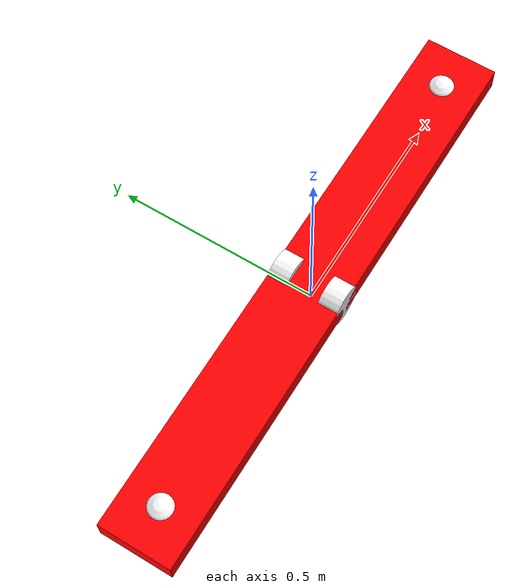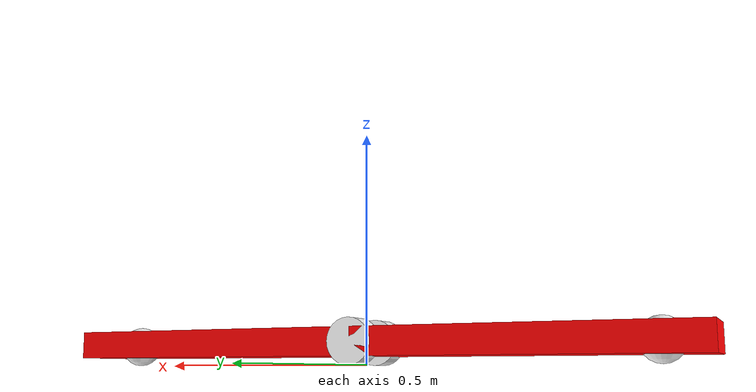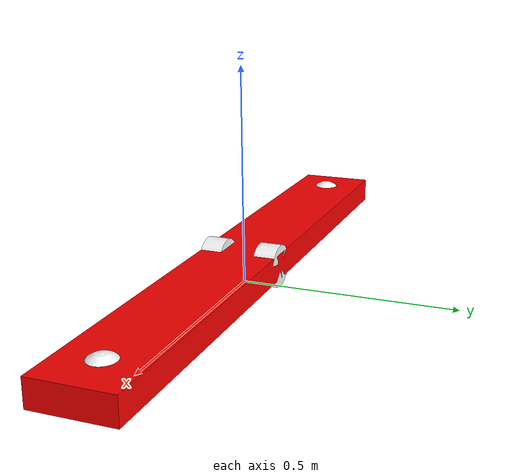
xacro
<?xml version="1.0"?>
<robot name="basic_mobile_bot" xmlns:xacro="http://ros.org/wiki/xacro">

  <xacro:include filename="$(find twinfork_description)/urdf/mech/twinfork.transmission.xacro" />
  <xacro:include filename="$(find twinfork_description)/urdf/controllers/diffdrive_gazebo.xacro" />
  <xacro:include filename="$(find twinfork_description)/urdf/sensors/laserscan.xacro" />
  <xacro:include filename="$(find twinfork_description)/urdf/sensors/imu.xacro" />

  <!-- ****************** ROBOT CONSTANTS *******************************  -->
  <!-- Define the size of the robot's main chassis in meters -->
  <xacro:property name="base_width" value="0.18" />
  <xacro:property name="base_length" value="1.4" />
  <xacro:property name="base_height" value="0.06" />

  <!-- Define the shape of the robot's two back wheels in meters -->
  <xacro:property name="wheel_radius" value="0.049" />
  <xacro:property name="wheel_width" value="0.05" />

  <!-- x-axis points forward, y-axis points to left, z-axis points upwards -->
  <!-- Define the gap between the wheel and chassis along y-axis in meters -->
  <xacro:property name="wheel_ygap" value="0.065" />

  <!-- Position the wheels along the z-axis -->
  <xacro:property name="wheel_zoff" value="0.05" />

  <!-- Position the wheels along the x-axis -->
  <xacro:property name="wheel_xoff" value="0.0" />

  <!-- Position the caster wheel along the x-axis -->
  <xacro:property name="caster_xoff" value="0.6" />

  <xacro:property name="caster_radius" value="0.045" />

  <xacro:property name="imu_stdev" value="0.00017" />

  <!-- Define intertial property macros  -->
  <xacro:macro name="box_inertia" params="m w h d">
    <inertial>
      <origin xyz="0 0 0" rpy="${pi/2} 0 ${pi/2}" />
      <mass value="${m}" />
      <inertia ixx="${(m/12) * (h*h + d*d)}" ixy="0.0" ixz="0.0" iyy="${(m/12) * (w*w + d*d)}"
        iyz="0.0" izz="${(m/12) * (w*w + h*h)}" />
    </inertial>
  </xacro:macro>

  <xacro:macro name="cylinder_inertia" params="m r h">
    <inertial>
      <origin xyz="0 0 0" rpy="${pi/2} 0 0" />
      <mass value="${m}" />
      <inertia ixx="${(m/12) * (3*r*r + h*h)}" ixy="0" ixz="0" iyy="${(m/12) * (3*r*r + h*h)}"
        iyz="0" izz="${(m/2) * (r*r)}" />
    </inertial>
  </xacro:macro>

  <xacro:macro name="sphere_inertia" params="m r">
    <inertial>
      <mass value="${m}" />
      <inertia ixx="${(2/5) * m * (r*r)}" ixy="0.0" ixz="0.0" iyy="${(2/5) * m * (r*r)}" iyz="0.0"
        izz="${(2/5) * m * (r*r)}" />
    </inertial>
  </xacro:macro>

  <!-- ****************** ROBOT BASE FOOTPRINT ***************************  -->
  <!-- Define the center of the main robot chassis projected on the ground -->
  <link name="base_footprint" />

  <!-- The base footprint of the robot is located underneath the chassis -->
  <joint name="base_joint" type="fixed">
    <parent link="base_footprint" />
    <child link="base_link" />
    <origin xyz="0.0 0.0 ${(wheel_radius+wheel_zoff)}" rpy="0 0 0" />
  </joint>

  <!-- ********************** ROBOT BASE *********************************  -->
  <link name="base_link">
    <visual>
      <origin xyz="0 0 -0.05" rpy="0.0 0 0.0" />
      <geometry>
        <box size="${base_length} ${base_width} ${base_height}" />
      </geometry>
      <material name="Red">
        <color rgba="${255/255} ${0/255} ${0/255} 1.0" />
      </material>
    </visual>

    <collision>
      <origin xyz="0 0 -0.05" rpy="0.0 0 0.0" />
      <geometry>
        <box size="${base_length} ${base_width} ${base_height}" />
      </geometry>
    </collision>

    <xacro:box_inertia m="5.0" w="${base_width}" d="${base_length}" h="${base_height}" />

  </link>

  <gazebo reference="base_link">
    <material>Gazebo/Red</material>
  </gazebo>

  <!-- *********************** DRIVE WHEELS ******************************  -->

  <xacro:macro name="wheel" params="prefix x_reflect y_reflect">
    <link name="${prefix}_link">
      <visual>
        <origin xyz="0 0 0" rpy="1.5707963267949 0 0" />
        <geometry>
          <cylinder radius="${wheel_radius}" length="${wheel_width}" />
        </geometry>
        <material name="White">
          <color rgba="${255/255} ${255/255} ${255/255} 1.0" />
        </material>
      </visual>

      <collision>
        <origin xyz="0 0 0" rpy="${pi/2} 0 0" />
        <geometry>
          <cylinder radius="${wheel_radius}" length="${wheel_width}" />
        </geometry>
      </collision>

      <xacro:cylinder_inertia m="10.0" r="${wheel_radius}" h="${wheel_width}" />

    </link>

    <!-- Connect the wheels to the base_link at the appropriate location, and
         define a continuous joint to allow the wheels to freely rotate about
         an axis -->
    <joint name="${prefix}_joint" type="continuous">
      <parent link="base_link" />
      <child link="${prefix}_link" />
      <origin xyz="${x_reflect*wheel_xoff} ${y_reflect*(wheel_ygap)} ${-wheel_zoff}" rpy="0 0 0" />
      <limit effort="1000" velocity="100.0" />
      <axis xyz="0 1 0" />
    </joint>

    <gazebo reference="${prefix}_link">
      <mu1>10.0</mu1>
      <mu2>10.0</mu2>
      <material>Gazebo/Black</material>
    </gazebo>

  </xacro:macro>

  <xacro:wheel prefix="drivewhl_l" x_reflect="-1" y_reflect="1" />
  <xacro:wheel prefix="drivewhl_r" x_reflect="1" y_reflect="-1" />

  <!-- *********************** CASTER WHEEL ******************************  -->
  <!-- We add a caster wheel. It will be modeled as sphere.
       We define the wheel’s geometry, material and the joint to connect it to
       base_link at the appropriate location. -->
  <link name="front_caster">
    <visual>
      <geometry>
        <sphere radius="${caster_radius}" />
      </geometry>
      <material name="White">
        <color rgba="${255/255} ${255/255} ${255/255} 1.0" />
      </material>
    </visual>
    <collision>
      <origin xyz="0 0 0" rpy="0 0 0" />
      <geometry>
        <sphere radius="${caster_radius}" />
      </geometry>
    </collision>
    <xacro:sphere_inertia m="0.1" r="${caster_radius}" />
  </link>

  <gazebo reference="front_caster">
    <mu1>0.01</mu1>
    <mu2>0.01</mu2>
    <material>Gazebo/White</material>
  </gazebo>

  <joint name="front_caster_joint" type="fixed">
    <parent link="base_link" />
    <child link="front_caster" />
    <origin xyz="${caster_xoff} 0.0 ${-(wheel_radius+wheel_zoff-caster_radius-0.001)}" rpy="0 0 0" />
  </joint>

  <link name="back_caster">
    <visual>
      <geometry>
        <sphere radius="${caster_radius}" />
      </geometry>
      <material name="White">
        <color rgba="${255/255} ${255/255} ${255/255} 1.0" />
      </material>
    </visual>
    <collision>
      <origin xyz="0 0 0" rpy="0 0 0" />
      <geometry>
        <sphere radius="${caster_radius}" />
      </geometry>
    </collision>
    <xacro:sphere_inertia m="0.1" r="${caster_radius}" />
  </link>

  <gazebo reference="back_caster">
    <mu1>0.01</mu1>
    <mu2>0.01</mu2>
    <material>Gazebo/White</material>
  </gazebo>

  <joint name="back_caster_joint" type="fixed">
    <parent link="base_link" />
    <child link="back_caster" />
    <origin xyz="${-(caster_xoff)} 0.0 ${-(wheel_radius+wheel_zoff-caster_radius-0.001)}"
      rpy="0 0 0" />
  </joint>

  <!-- *********************** IMU SETUP *********************************  -->
  <!-- Each sensor must be attached to a link.                              -->

  <joint name="imu_joint" type="fixed">
    <parent link="base_link" />
    <child link="imu_link" />
    <origin xyz="-0.10 0 0.05" rpy="0 0 0" />
  </joint>

  <link name="imu_link" />

  <xacro:imu_gazebo link="imu_link" imu_topic="imu_data" update_rate="50.0" stdev="${imu_stdev}" />

  <!-- *********************** GPS SETUP **********************************  -->
  <joint name="gps_joint" type="fixed">
    <parent link="base_link" />
    <child link="gps_link" />
    <origin xyz="0.10 0 0.05" rpy="0 0 0" />
  </joint>

  <link name="gps_link" />

  <link name="lifter_link">
    <visual>
      <origin xyz="0 0 0" rpy="0 0 0" />
      <geometry>
        <box size="${base_length-0.01} ${base_width-0.01} ${base_height-0.01}" />
      </geometry>
      <material name="Blue">
        <color rgba="0.1 0.1 0.9 1.0" />
      </material>
    </visual>
    <collision>
      <origin xyz="0 0 0" rpy="0 0 0" />
      <geometry>
        <box size="${base_length-0.01} ${base_width-0.01} ${base_height-0.01}" />
      </geometry>
    </collision>
    <xacro:box_inertia m="0.5" w="${base_width-0.01}" d="${base_length-0.01}"
      h="${base_height-0.01}" />
  </link>

  <!-- *********************** LIDAR SETUP **********************************  -->
  <!-- Front laser –– ยิงไปข้างหน้า -->
  <xacro:laser_sensor
    name="front_laser"
    parent="base_link"
    xyz="0.60 0 -0.05"
    rpy="0 0 ${(pi/4) - 0.2618}"
    min_angle="-2.356"
    max_angle="2.356"
    topic="front_scan" />

  <!-- Back laser –– ยิงกลับหลัง (หมุน 180°) -->
  <xacro:laser_sensor
    name="back_laser"
    parent="base_link"
    xyz="-0.60 0 -0.05"
    rpy="0 0 ${pi + pi/4 - 0.2618}"
    min_angle="-2.356"
    max_angle="2.356"
    topic="back_scan" />

  <joint name="lifter" type="prismatic">
    <parent link="base_link" />
    <child link="lifter_link" />
    <!-- origin ตั้งตำแหน่งเริ่มต้น -->
    <origin xyz="0 0 -0.05" rpy="0 0 0" />
    <!-- แกน Z บน base_link -->
    <axis xyz="0 0 1" />
    <limit lower="0.0" upper="0.050" effort="100000" velocity="100.0" />
  </joint>

  <xacro:twinfork_wheel_transmissions />
  <xacro:diff_controller_plugin_gazebo
    prefix=""
    ns=""
    left_wheel_joint="drivewhl_l_joint"
    right_wheel_joint="drivewhl_r_joint"
    wheel_separation="${2*wheel_ygap}"
    wheel_radius="${wheel_radius}"
  />

  <transmission name="lifter_trans">
    <type>transmission_interface/SimpleTransmission</type>
    <joint name="lifter">
      <hardwareInterface>hardware_interface/VelocityJointInterface</hardwareInterface>
    </joint>
    <actuator name="lifter_motor">
      <hardwareInterface>hardware_interface/VelocityJointInterface</hardwareInterface>
      <mechanicalReduction>1</mechanicalReduction>
    </actuator>
  </transmission>

  <ros2_control name="GazeboSystem" type="system">
    <hardware>
      <plugin>gazebo_ros2_control/GazeboSystem</plugin>
    </hardware>
    <joint name="lifter">
      <command_interface name="effort">
        <param name="min">-1000</param>
        <param name="max">1000</param>
      </command_interface>
      <state_interface name="position" />
      <state_interface name="velocity" />
      <state_interface name="effort" />
    </joint>
  </ros2_control>

  <gazebo>
    <plugin filename="libgazebo_ros2_control.so" name="gazebo_ros2_control">
      <parameters>$(find twinfork_description)/config/lifter_controller.yaml</parameters>
    </plugin>
  </gazebo>

</robot>

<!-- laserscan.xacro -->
<robot xmlns:xacro="http://ros.org/wiki/xacro">

  <xacro:include filename="$(find twinfork_description)/urdf/common_properties.urdf.xacro" />

  <!-- ===== Macro: laser_sensor ===== -->
  <xacro:macro name="laser_sensor"
    params="
      name
      parent
      xyz:='0 0 0'
      rpy:='0 0 0'
      radius:='0.05'
      length:='0.03'
      mass:='0.20'
      samples:='600'
      min_angle:='-1.57'
      max_angle:='1.57'
      min_range:='0.5'
      max_range:='20.0'
      update_rate:='10'
      topic:='scan'
      namespace:=''">

    <!-- Joint -->
    <joint name="${name}_joint" type="fixed">
      <parent link="${parent}" />
      <child link="${name}_link" />
      <origin xyz="${xyz}" rpy="${rpy}" />
    </joint>

    <!-- Link -->
    <link name="${name}_link">
      <visual>
        <geometry>
          <cylinder radius="${radius}" length="${length}" />
        </geometry>
        <material name="White">
          <color rgba="1 1 1 1" />
        </material>
      </visual>
      <collision>
        <geometry>
          <cylinder radius="${radius}" length="${length}" />
        </geometry>
      </collision>
      <xacro:cylinder_inertial mass="1.0" radius="${radius}" length="${length}">
        <origin xyz="0 0 0" rpy="0 0 0"/>
      </xacro:cylinder_inertial>
    </link>

    <!-- Gazebo sensor -->
    <gazebo reference="${name}_link">
      <sensor name="${name}_ray" type="ray">
        <update_rate>${update_rate}</update_rate>
        <visualize>true</visualize>
        <ray>
          <scan>
            <horizontal>
              <samples>${samples}</samples>
              <min_angle>${min_angle}</min_angle>
              <max_angle>${max_angle}</max_angle>
            </horizontal>
          </scan>
          <range>
            <min>${min_range}</min>
            <max>${max_range}</max>
          </range>
        </ray>
        <plugin name="${name.replace('/', '_')}_plugin" filename="libgazebo_ros_ray_sensor.so">
          <ros>
            <namespace>${namespace}</namespace>
            <remapping>~/out:=${topic}</remapping>
          </ros>
          <output_type>sensor_msgs/LaserScan</output_type>
          <frame_name>${name}_link</frame_name>
        </plugin>
      </sensor>
    </gazebo>

  </xacro:macro>

</robot>

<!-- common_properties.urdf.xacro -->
<!--
  Various useful properties such as constants and materials
 -->
<robot name="xacro_properties" xmlns:xacro="http://ros.org/wiki/xacro">
  <!-- #################### Robot materials #################### -->
  <xacro:property name="base_length" value="1.4" />
  <xacro:property name="base_width"  value="0.18" />
  <xacro:property name="base_height" value="0.06" />
  <xacro:property name="wheel_radius" value="0.049" />
  <xacro:property name="wheel_width"  value="0.05" />
  <xacro:property name="wheel_ygap" value="0.065" />
  <xacro:property name="wheel_zoff" value="0.0" />
  <xacro:property name="wheel_xoff" value="0.0" />
  <xacro:property name="caster_xoff" value="0.6" />
  <xacro:property name="caster_radius" value="0.045" />
  <xacro:property name="imu_stdev" value="0.00017" />
  <!-- #################### RViz materials #################### -->
  <xacro:property name="material_white">
    <material name="white">
      <color rgba="1 1 1 1"/>
    </material>
  </xacro:property>
  <xacro:property name="material_yellow">
    <material name="yellow">
      <color rgba="${255/255} ${226/255} ${0/255} 1"/>
    </material>
  </xacro:property>
  <xacro:property name="material_almost_white">
    <material name="almost_white">
      <color rgba="0.9 0.9 0.9 1" />
    </material>
  </xacro:property>
  <xacro:property name="material_grey">
    <material name="grey">
      <color rgba="0.5 0.5 0.5 1"/>
    </material>
  </xacro:property>
  <xacro:property name="material_light_grey">
    <material name="light_grey">
      <color rgba="0.6 0.6 0.6 1"/>
    </material>
  </xacro:property>
  <xacro:property name="material_dark_grey">
    <material name="dark_grey">
      <color rgba="0.3 0.3 0.3 1"/>
    </material>
  </xacro:property>
  <xacro:property name="material_black">
    <material name="black">
      <color rgba="0.1 0.1 0.1 1"/>
    </material>
  </xacro:property>
  <xacro:property name="material_aluminum">
    <material name="aluminum">
      <color rgba="0.8 0.8 0.8 1" />
    </material>
  </xacro:property>
  <xacro:property name="material_silver">
    <material name="silver">
      <color rgba="0.79 0.82 0.93 1" />
    </material>
  </xacro:property>
  <xacro:property name="material_red">
    <material name="red">
      <color rgba="1 0 0 1" />
    </material>
  </xacro:property>

  <!-- #################### inertials with origin #################### -->
  <!-- see https://secure.wikimedia.org/wikipedia/en/wiki/List_of_moment_of_inertia_tensors -->
  <xacro:macro name="sphere_inertial" params="radius mass *origin">
    <inertial>
      <mass value="${mass}" />
      <xacro:insert_block name="origin" />
      <inertia ixx="${0.4 * mass * radius * radius}" ixy="0.0" ixz="0.0"
        iyy="${0.4 * mass * radius * radius}" iyz="0.0"
        izz="${0.4 * mass * radius * radius}" />
    </inertial>
  </xacro:macro>

  <xacro:macro name="cylinder_inertial" params="radius length mass *origin">
    <inertial>
      <mass value="${mass}" />
      <xacro:insert_block name="origin" />
      <inertia ixx="${0.0833333 * mass * (3 * radius * radius + length * length)}" ixy="0.0" ixz="0.0"
        iyy="${0.0833333 * mass * (3 * radius * radius + length * length)}" iyz="0.0"
        izz="${0.5 * mass * radius * radius}" />
    </inertial>
  </xacro:macro>

  <xacro:macro name="box_inertial" params="x y z mass *origin">
    <inertial>
      <mass value="${mass}" />
      <xacro:insert_block name="origin" />
      <inertia ixx="${0.0833333 * mass * (y*y + z*z)}" ixy="0.0" ixz="0.0"
        iyy="${0.0833333 * mass * (x*x + z*z)}" iyz="0.0"
        izz="${0.0833333 * mass * (x*x + y*y)}" />
    </inertial>
  </xacro:macro>
</robot>

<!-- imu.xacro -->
<robot xmlns:xacro="http://ros.org/wiki/xacro">
  <!-- If tf_prefix is given, use "frame tf_prefix/imu_frame", else "imu_frame" -->
  <xacro:arg name="tf_prefix" default="" />
  <xacro:property name="tf_prefix" value="$(arg tf_prefix)" />
  <xacro:if value="${tf_prefix == ''}">
      <xacro:property name="imu_frame" value="imu_frame" />
  </xacro:if>
  <xacro:unless value="${tf_prefix == ''}">
      <xacro:property name="imu_frame" value="$(arg tf_prefix)/imu_frame" />
  </xacro:unless>

  <xacro:macro name="imu_gazebo" params="link namespace update_rate stdev">
    <gazebo reference="${link}">
      <gravity>true</gravity>
      <sensor name="imu_sensor" type="imu">
        <always_on>true</always_on>
        <update_rate>${update_rate}</update_rate>
        <visualize>true</visualize>
        <imu>
          <angular_velocity>
            <x>
              <noise type="gaussian">
                <mean>0.0</mean>
                <stddev>${stdev}</stddev>
                <bias_mean>0.0000075</bias_mean>
                <bias_stddev>0.0000008</bias_stddev>
              </noise>
            </x>
            <y>
              <noise type="gaussian">
                <mean>0.0</mean>
                <stddev>${stdev}</stddev>
                <bias_mean>0.0000075</bias_mean>
                <bias_stddev>0.0000008</bias_stddev>
              </noise>
            </y>
            <z>
              <noise type="gaussian">
                <mean>0.0</mean>
                <stddev>${stdev}</stddev>
                <bias_mean>0.0000075</bias_mean>
                <bias_stddev>0.0000008</bias_stddev>
              </noise>
            </z>
          </angular_velocity>
          <linear_acceleration>
            <x>
              <noise type="gaussian">
                <mean>0.0</mean>
                <stddev>${stdev}</stddev>
                <bias_mean>0.1</bias_mean>
                <bias_stddev>0.001</bias_stddev>
              </noise>
            </x>
            <y>
              <noise type="gaussian">
                <mean>0.0</mean>
                <stddev>${stdev}</stddev>
                <bias_mean>0.1</bias_mean>
                <bias_stddev>0.001</bias_stddev>
              </noise>
            </y>
            <z>
              <noise type="gaussian">
                <mean>0.0</mean>
                <stddev>${stdev}</stddev>
                <bias_mean>0.1</bias_mean>
                <bias_stddev>0.001</bias_stddev>
              </noise>
            </z>
          </linear_acceleration>
        </imu>
        <plugin filename="libgazebo_ros_imu_sensor.so" name="imu_plugin">
        <initial_orientation_as_reference>false</initial_orientation_as_reference>
          <ros>
            <namespace>${namespace}</namespace>
            <remapping>~/out:=/${namespace}/imu_data</remapping>
            <frame_name>${imu_frame}</frame_name>  <!-- from real MiR -->
          </ros>
          <robot_param_node>/${namespace}/robot_state_publisher</robot_param_node>
        </plugin>
      </sensor>
    </gazebo>
  </xacro:macro>
</robot>
